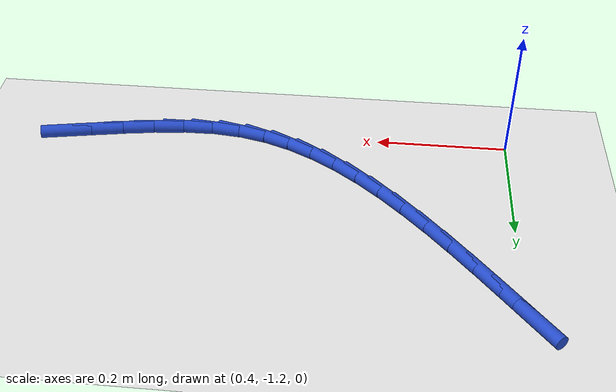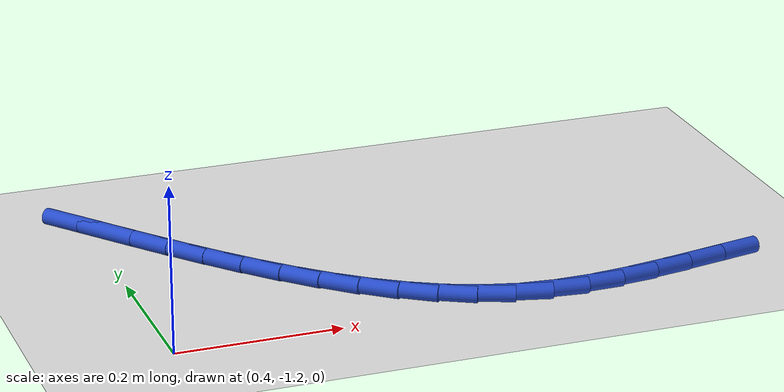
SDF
<sdf version="1.6">
 <world name="default">
  <model name="ground_plane">
   <static>1</static>
   <link name="link">
    <collision name="collision">
     <geometry><plane><normal>0 0 1</normal><size>100 100</size></plane></geometry>
     <surface><friction><ode><mu>100</mu><mu2>50</mu2></ode></friction></surface>
    </collision>
    <visual name="visual">
     <cast_shadows>0</cast_shadows>
     <geometry><plane><normal>0 0 1</normal><size>100 100</size></plane></geometry>
     <material>
      <script><uri>file://media/materials/scripts/gazebo.material</uri><name>Gazebo/WhiteGlow</name></script>
     </material>
    </visual>
   </link>
  </model>
  <model name="line">
   <link name="link_113">
    <pose>1.0950232454541469 -1.1668235705288093 0.01 0 1.57 0.19404243920463643</pose>
    <collision name="collision">
     <geometry><cylinder><radius>0.01</radius><length>0.08</length></cylinder></geometry>
    </collision>
    <visual name="visual">
     <material>
      <script><name>Gazebo/Blue</name><uri>file://media/materials/scripts/gazebo.material</uri></script>
     </material>
     <geometry><cylinder><radius>0.01</radius><length>0.08</length></cylinder></geometry>
    </visual>
   </link>
   <link name="link_114">
    <pose>1.0457604201201152 -1.1765044585184556 0.01 0 1.57 0.18792709042181752</pose>
    <collision name="collision">
     <geometry><cylinder><radius>0.01</radius><length>0.08</length></cylinder></geometry>
    </collision>
    <visual name="visual">
     <material>
      <script><name>Gazebo/Blue</name><uri>file://media/materials/scripts/gazebo.material</uri></script>
     </material>
     <geometry><cylinder><radius>0.01</radius><length>0.08</length></cylinder></geometry>
    </visual>
   </link>
   <link name="link_115">
    <pose>0.9974072112977479 -1.185699841959357 0.01 0 1.57 0.15718728227610226</pose>
    <collision name="collision">
     <geometry><cylinder><radius>0.01</radius><length>0.08</length></cylinder></geometry>
    </collision>
    <visual name="visual">
     <material>
      <script><name>Gazebo/Blue</name><uri>file://media/materials/scripts/gazebo.material</uri></script>
     </material>
     <geometry><cylinder><radius>0.01</radius><length>0.08</length></cylinder></geometry>
    </visual>
   </link>
   <link name="link_116">
    <pose>0.9501060133179007 -1.1931968355068754 0.01 0 1.57 0.09913261097292789</pose>
    <collision name="collision">
     <geometry><cylinder><radius>0.01</radius><length>0.08</length></cylinder></geometry>
    </collision>
    <visual name="visual">
     <material>
      <script><name>Gazebo/Blue</name><uri>file://media/materials/scripts/gazebo.material</uri></script>
     </material>
     <geometry><cylinder><radius>0.01</radius><length>0.08</length></cylinder></geometry>
    </visual>
   </link>
   <link name="link_117">
    <pose>0.9039992205114288 -1.1977825538163744 0.01 0 1.57 0.010309167846465885</pose>
    <collision name="collision">
     <geometry><cylinder><radius>0.01</radius><length>0.08</length></cylinder></geometry>
    </collision>
    <visual name="visual">
     <material>
      <script><name>Gazebo/Blue</name><uri>file://media/materials/scripts/gazebo.material</uri></script>
     </material>
     <geometry><cylinder><radius>0.01</radius><length>0.08</length></cylinder></geometry>
    </visual>
   </link>
   <link name="link_118">
    <pose>0.8592292272091847 -1.1982441115432172 0.01 0 1.57 -0.11208905444037401</pose>
    <collision name="collision">
     <geometry><cylinder><radius>0.01</radius><length>0.08</length></cylinder></geometry>
    </collision>
    <visual name="visual">
     <material>
      <script><name>Gazebo/Blue</name><uri>file://media/materials/scripts/gazebo.material</uri></script>
     </material>
     <geometry><cylinder><radius>0.01</radius><length>0.08</length></cylinder></geometry>
    </visual>
   </link>
   <link name="link_119">
    <pose>0.8159380492560796 -1.1933712196269386 0.01 0 1.57 -0.2556322616319341</pose>
    <collision name="collision">
     <geometry><cylinder><radius>0.01</radius><length>0.08</length></cylinder></geometry>
    </collision>
    <visual name="visual">
     <material>
      <script><name>Gazebo/Blue</name><uri>file://media/materials/scripts/gazebo.material</uri></script>
     </material>
     <geometry><cylinder><radius>0.01</radius><length>0.08</length></cylinder></geometry>
    </visual>
   </link>
   <link name="link_120">
    <pose>0.7741936847466675 -1.1824613254666727 0.01 0 1.57 -0.3894643584947898</pose>
    <collision name="collision">
     <geometry><cylinder><radius>0.01</radius><length>0.08</length></cylinder></geometry>
    </collision>
    <visual name="visual">
     <material>
      <script><name>Gazebo/Blue</name><uri>file://media/materials/scripts/gazebo.material</uri></script>
     </material>
     <geometry><cylinder><radius>0.01</radius><length>0.08</length></cylinder></geometry>
    </visual>
   </link>
   <link name="link_121">
    <pose>0.7339019438296419 -1.16592443031557 0.01 0 1.57 -0.5064096168557017</pose>
    <collision name="collision">
     <geometry><cylinder><radius>0.01</radius><length>0.08</length></cylinder></geometry>
    </collision>
    <visual name="visual">
     <material>
      <script><name>Gazebo/Blue</name><uri>file://media/materials/scripts/gazebo.material</uri></script>
     </material>
     <geometry><cylinder><radius>0.01</radius><length>0.08</length></cylinder></geometry>
    </visual>
   </link>
   <link name="link_122">
    <pose>0.6949471424121089 -1.1443179785748574 0.01 0 1.57 -0.6054611702820806</pose>
    <collision name="collision">
     <geometry><cylinder><radius>0.01</radius><length>0.08</length></cylinder></geometry>
    </collision>
    <visual name="visual">
     <material>
      <script><name>Gazebo/Blue</name><uri>file://media/materials/scripts/gazebo.material</uri></script>
     </material>
     <geometry><cylinder><radius>0.01</radius><length>0.08</length></cylinder></geometry>
    </visual>
   </link>
   <link name="link_123">
    <pose>0.6572135964011714 -1.118199414645762 0.01 0 1.57 -0.6874424448914608</pose>
    <collision name="collision">
     <geometry><cylinder><radius>0.01</radius><length>0.08</length></cylinder></geometry>
    </collision>
    <visual name="visual">
     <material>
      <script><name>Gazebo/Blue</name><uri>file://media/materials/scripts/gazebo.material</uri></script>
     </material>
     <geometry><cylinder><radius>0.01</radius><length>0.08</length></cylinder></geometry>
    </visual>
   </link>
   <link name="link_124">
    <pose>0.6205856217039354 -1.0881261829295104 0.01 0 1.57 -0.7540428218984337</pose>
    <collision name="collision">
     <geometry><cylinder><radius>0.01</radius><length>0.08</length></cylinder></geometry>
    </collision>
    <visual name="visual">
     <material>
      <script><name>Gazebo/Blue</name><uri>file://media/materials/scripts/gazebo.material</uri></script>
     </material>
     <geometry><cylinder><radius>0.01</radius><length>0.08</length></cylinder></geometry>
    </visual>
   </link>
   <link name="link_125">
    <pose>0.584947534227506 -1.0546557278273299 0.01 0 1.57 -0.807151592743894</pose>
    <collision name="collision">
     <geometry><cylinder><radius>0.01</radius><length>0.08</length></cylinder></geometry>
    </collision>
    <visual name="visual">
     <material>
      <script><name>Gazebo/Blue</name><uri>file://media/materials/scripts/gazebo.material</uri></script>
     </material>
     <geometry><cylinder><radius>0.01</radius><length>0.08</length></cylinder></geometry>
    </visual>
   </link>
   <link name="link_126">
    <pose>0.5501836498789874 -1.018345493740447 0.01 0 1.57 -0.8485006905534189</pose>
    <collision name="collision">
     <geometry><cylinder><radius>0.01</radius><length>0.08</length></cylinder></geometry>
    </collision>
    <visual name="visual">
     <material>
      <script><name>Gazebo/Blue</name><uri>file://media/materials/scripts/gazebo.material</uri></script>
     </material>
     <geometry><cylinder><radius>0.01</radius><length>0.08</length></cylinder></geometry>
    </visual>
   </link>
   <link name="link_127">
    <pose>0.5161782845654852 -0.979752925070089 0.01 0 1.57 -0.8795130207043097</pose>
    <collision name="collision">
     <geometry><cylinder><radius>0.01</radius><length>0.08</length></cylinder></geometry>
    </collision>
    <visual name="visual">
     <material>
      <script><name>Gazebo/Blue</name><uri>file://media/materials/scripts/gazebo.material</uri></script>
     </material>
     <geometry><cylinder><radius>0.01</radius><length>0.08</length></cylinder></geometry>
    </visual>
   </link>
   <link name="link_128">
    <pose>0.4828157541941035 -0.9394354662174825 0.01 0 1.57 -0.9012586954136484</pose>
    <collision name="collision">
     <geometry><cylinder><radius>0.01</radius><length>0.08</length></cylinder></geometry>
    </collision>
    <visual name="visual">
     <material>
      <script><name>Gazebo/Blue</name><uri>file://media/materials/scripts/gazebo.material</uri></script>
     </material>
     <geometry><cylinder><radius>0.01</radius><length>0.08</length></cylinder></geometry>
    </visual>
   </link>
   <link name="link_129">
    <pose>0.4499803746719474 -0.8979505615838539 0.01 0 1.57 -0.91445603823522</pose>
    <collision name="collision">
     <geometry><cylinder><radius>0.01</radius><length>0.08</length></cylinder></geometry>
    </collision>
    <visual name="visual">
     <material>
      <script><name>Gazebo/Blue</name><uri>file://media/materials/scripts/gazebo.material</uri></script>
     </material>
     <geometry><cylinder><radius>0.01</radius><length>0.08</length></cylinder></geometry>
    </visual>
   </link>
   <link name="link_130">
    <pose>0.4175564619061226 -0.8558556555704314 0.01 0 1.57 -0.9194828008413545</pose>
    <collision name="collision">
     <geometry><cylinder><radius>0.01</radius><length>0.08</length></cylinder></geometry>
    </collision>
    <visual name="visual">
     <material>
      <script><name>Gazebo/Blue</name><uri>file://media/materials/scripts/gazebo.material</uri></script>
     </material>
     <geometry><cylinder><radius>0.01</radius><length>0.08</length></cylinder></geometry>
    </visual>
   </link>
   <link name="link_131">
    <pose>0.38542833180373287 -0.8137081925784406 0.01 0 1.57 -0.9163800940684422</pose>
    <collision name="collision">
     <geometry><cylinder><radius>0.01</radius><length>0.08</length></cylinder></geometry>
    </collision>
    <visual name="visual">
     <material>
      <script><name>Gazebo/Blue</name><uri>file://media/materials/scripts/gazebo.material</uri></script>
     </material>
     <geometry><cylinder><radius>0.01</radius><length>0.08</length></cylinder></geometry>
    </visual>
   </link>
  </model>
 </world>
</sdf>
